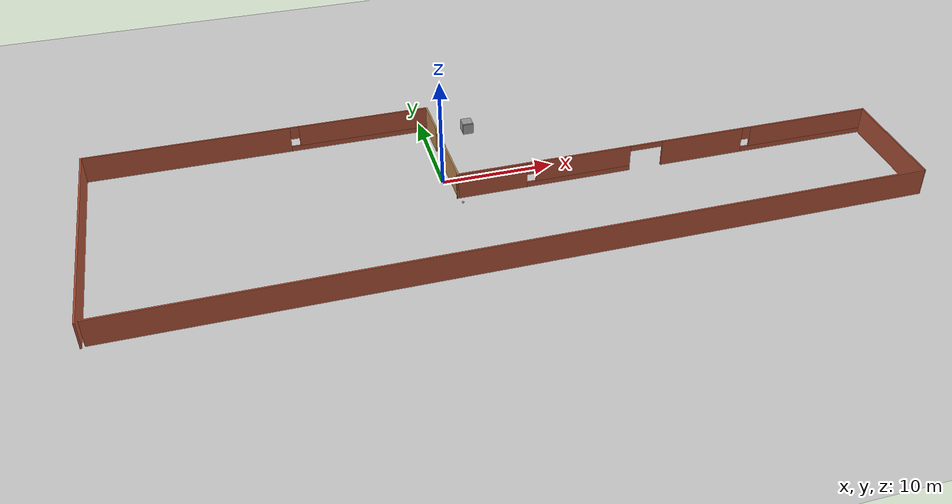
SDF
<sdf version="1.6">
 <world name="default">
  <plugin name="hello" filename="libhello.so"/>
  <light name="sun" type="directional">
   <pose>0 0 10 0 -0 0</pose>
   <diffuse>0.8 0.8 0.8 1</diffuse>
   <specular>0.2 0.2 0.2 1</specular>
   <attenuation>
    <range>1000</range>
    <constant>0.9</constant>
    <linear>0.01</linear>
    <quadratic>0.001</quadratic>
   </attenuation>
   <direction>-0.5 0.1 -0.9</direction>
  </light>
  <model name="ground_plane">
   <static>1</static>
   <link name="link">
    <collision name="collision">
     <geometry><plane><normal>0 0 1</normal><size>100 100</size></plane></geometry>
     <surface>
      <contact><collide_bitmask>65535</collide_bitmask></contact>
      <friction><ode><mu>100</mu><mu2>50</mu2></ode></friction>
     </surface>
    </collision>
    <visual name="visual">
     <cast_shadows>0</cast_shadows>
     <geometry><plane><normal>0 0 1</normal><size>100 100</size></plane></geometry>
     <material>
      <script><uri>file://media/materials/scripts/gazebo.material</uri><name>Gazebo/Grey</name></script>
     </material>
    </visual>
   </link>
  </model>
  <gravity>0 0 -9.8</gravity>
  <magnetic_field>6e-06 2.3e-05 -4.2e-05</magnetic_field>
  <atmosphere type="adiabatic"/>
  <physics name="default_physics" default="0" type="ode">
   <max_step_size>0.001</max_step_size>
   <real_time_factor>1</real_time_factor>
   <real_time_update_rate>1000</real_time_update_rate>
  </physics>
  <scene><ambient>0.4 0.4 0.4 1</ambient><background>0.7 0.7 0.7 1</background><shadows>1</shadows></scene>
  <spherical_coordinates>
   <surface_model>EARTH_WGS84</surface_model>
   <latitude_deg>0</latitude_deg>
   <longitude_deg>0</longitude_deg>
   <elevation>0</elevation>
   <heading_deg>0</heading_deg>
  </spherical_coordinates>
  <model name="Building">
   <pose>4.6603 -2.25703 0 0 -0 0</pose>
   <link name="Wall_0">
    <collision name="Wall_0_Collision">
     <geometry><box><size>22 0.15 2.5</size></box></geometry>
     <pose>0 0 1.25 0 -0 0</pose>
    </collision>
    <visual name="Wall_0_Visual">
     <pose>0 0 1.25 0 -0 0</pose>
     <geometry><box><size>22 0.15 2.5</size></box></geometry>
     <material>
      <script><uri>file://media/materials/scripts/gazebo.material</uri><name>Gazebo/Bricks</name></script>
      <ambient>0.921569 0.807843 0.615686 1</ambient>
     </material>
     <meta><layer>0</layer></meta>
    </visual>
    <pose>-34.9442 -0.000612 0 0 -0 1.5708</pose>
   </link>
   <link name="Wall_1">
    <pose>-19.5192 10.9244 0 0 -0 0</pose>
    <visual name="Wall_1_Visual_0">
     <pose>-6.39846 0 1.25 0 -0 0</pose>
     <geometry><box><size>18.2031 0.15 2.5</size></box></geometry>
     <material>
      <script><uri>file://media/materials/scripts/gazebo.material</uri><name>Gazebo/Bricks</name></script>
      <ambient>1 1 1 1</ambient>
     </material>
     <meta><layer>0</layer></meta>
    </visual>
    <collision name="Wall_1_Collision_0">
     <geometry><box><size>18.2031 0.15 2.5</size></box></geometry>
     <pose>-6.39846 0 1.25 0 -0 0</pose>
    </collision>
    <visual name="Wall_1_Visual_1">
     <pose>9.10154 0 0.25 0 -0 0</pose>
     <geometry><box><size>12.7969 0.15 0.5</size></box></geometry>
     <material>
      <script><uri>file://media/materials/scripts/gazebo.material</uri><name>Gazebo/Bricks</name></script>
      <ambient>1 1 1 1</ambient>
     </material>
     <meta><layer>0</layer></meta>
    </visual>
    <collision name="Wall_1_Collision_1">
     <geometry><box><size>12.7969 0.15 0.5</size></box></geometry>
     <pose>9.10154 0 0.25 0 -0 0</pose>
    </collision>
    <visual name="Wall_1_Visual_2">
     <pose>9.50155 0 1.5 0 -0 0</pose>
     <geometry><box><size>11.9969 0.15 2</size></box></geometry>
     <material>
      <script><uri>file://media/materials/scripts/gazebo.material</uri><name>Gazebo/Bricks</name></script>
      <ambient>1 1 1 1</ambient>
     </material>
     <meta><layer>0</layer></meta>
    </visual>
    <collision name="Wall_1_Collision_2">
     <geometry><box><size>11.9969 0.15 2</size></box></geometry>
     <pose>9.50155 0 1.5 0 -0 0</pose>
    </collision>
    <visual name="Wall_1_Visual_3">
     <pose>3.10309 0 1.9 0 -0 0</pose>
     <geometry><box><size>0.8 0.15 1.2</size></box></geometry>
     <material>
      <script><uri>file://media/materials/scripts/gazebo.material</uri><name>Gazebo/Bricks</name></script>
      <ambient>1 1 1 1</ambient>
     </material>
     <meta><layer>0</layer></meta>
    </visual>
    <collision name="Wall_1_Collision_3">
     <geometry><box><size>0.8 0.15 1.2</size></box></geometry>
     <pose>3.10309 0 1.9 0 -0 0</pose>
    </collision>
   </link>
   <link name="Wall_2">
    <pose>-4.00067 5.24939 0 0 0 -1.55431</pose>
    <visual name="Wall_2_Visual_0">
     <pose>-3.8412 0 1.25 0 -0 0</pose>
     <geometry><box><size>3.81914 0.15 2.5</size></box></geometry>
     <material>
      <script><uri>file://media/materials/scripts/gazebo.material</uri><name>Gazebo/Wood</name></script>
      <ambient>1 0.764706 0.305882 1</ambient>
     </material>
     <meta><layer>0</layer></meta>
    </visual>
    <collision name="Wall_2_Collision_0">
     <geometry><box><size>3.81914 0.15 2.5</size></box></geometry>
     <pose>-3.8412 0 1.25 0 -0 0</pose>
    </collision>
    <visual name="Wall_2_Visual_1">
     <pose>3.35957 0 1.25 0 -0 0</pose>
     <geometry><box><size>4.7824 0.15 2.5</size></box></geometry>
     <material>
      <script><uri>file://media/materials/scripts/gazebo.material</uri><name>Gazebo/Wood</name></script>
      <ambient>1 0.764706 0.305882 1</ambient>
     </material>
     <meta><layer>0</layer></meta>
    </visual>
    <collision name="Wall_2_Collision_1">
     <geometry><box><size>4.7824 0.15 2.5</size></box></geometry>
     <pose>3.35957 0 1.25 0 -0 0</pose>
    </collision>
    <visual name="Wall_2_Visual_2">
     <pose>-0.481631 0 2.25 0 -0 0</pose>
     <geometry><box><size>2.9 0.15 0.5</size></box></geometry>
     <material>
      <script><uri>file://media/materials/scripts/gazebo.material</uri><name>Gazebo/Wood</name></script>
      <ambient>1 0.764706 0.305882 1</ambient>
     </material>
     <meta><layer>0</layer></meta>
    </visual>
    <collision name="Wall_2_Collision_2">
     <geometry><box><size>2.9 0.15 0.5</size></box></geometry>
     <pose>-0.481631 0 2.25 0 -0 0</pose>
    </collision>
   </link>
   <link name="Wall_3">
    <pose>15.4243 -0.425612 0 0 -0 0</pose>
    <visual name="Wall_3_Visual_0">
     <pose>-16.3255 0 1.25 0 -0 0</pose>
     <geometry><box><size>6.34906 0.15 2.5</size></box></geometry>
     <material>
      <script><uri>file://media/materials/scripts/gazebo.material</uri><name>Gazebo/Bricks</name></script>
      <ambient>0.435294 0.796078 0.67451 1</ambient>
     </material>
     <meta><layer>0</layer></meta>
    </visual>
    <collision name="Wall_3_Collision_0">
     <geometry><box><size>6.34906 0.15 2.5</size></box></geometry>
     <pose>-16.3255 0 1.25 0 -0 0</pose>
    </collision>
    <visual name="Wall_3_Visual_1">
     <pose>3.33272 0 1.25 0 -0 0</pose>
     <geometry><box><size>7.83192 0.15 2.5</size></box></geometry>
     <material>
      <script><uri>file://media/materials/scripts/gazebo.material</uri><name>Gazebo/Bricks</name></script>
      <ambient>0.435294 0.796078 0.67451 1</ambient>
     </material>
     <meta><layer>0</layer></meta>
    </visual>
    <collision name="Wall_3_Collision_1">
     <geometry><box><size>7.83192 0.15 2.5</size></box></geometry>
     <pose>3.33272 0 1.25 0 -0 0</pose>
    </collision>
    <visual name="Wall_3_Visual_2">
     <pose>-8.36709 0 0.25 0 -0 0</pose>
     <geometry><box><size>9.5677 0.15 0.5</size></box></geometry>
     <material>
      <script><uri>file://media/materials/scripts/gazebo.material</uri><name>Gazebo/Bricks</name></script>
      <ambient>0.435294 0.796078 0.67451 1</ambient>
     </material>
     <meta><layer>0</layer></meta>
    </visual>
    <collision name="Wall_3_Collision_2">
     <geometry><box><size>9.5677 0.15 0.5</size></box></geometry>
     <pose>-8.36709 0 0.25 0 -0 0</pose>
    </collision>
    <visual name="Wall_3_Visual_3">
     <pose>13.3743 0 0.25 0 -0 0</pose>
     <geometry><box><size>12.2513 0.15 0.5</size></box></geometry>
     <material>
      <script><uri>file://media/materials/scripts/gazebo.material</uri><name>Gazebo/Bricks</name></script>
      <ambient>0.435294 0.796078 0.67451 1</ambient>
     </material>
     <meta><layer>0</layer></meta>
    </visual>
    <collision name="Wall_3_Collision_3">
     <geometry><box><size>12.2513 0.15 0.5</size></box></geometry>
     <pose>13.3743 0 0.25 0 -0 0</pose>
    </collision>
    <visual name="Wall_3_Visual_4">
     <pose>-7.96709 0 1.5 0 -0 0</pose>
     <geometry><box><size>8.7677 0.15 2</size></box></geometry>
     <material>
      <script><uri>file://media/materials/scripts/gazebo.material</uri><name>Gazebo/Bricks</name></script>
      <ambient>0.435294 0.796078 0.67451 1</ambient>
     </material>
     <meta><layer>0</layer></meta>
    </visual>
    <collision name="Wall_3_Collision_4">
     <geometry><box><size>8.7677 0.15 2</size></box></geometry>
     <pose>-7.96709 0 1.5 0 -0 0</pose>
    </collision>
    <visual name="Wall_3_Visual_5">
     <pose>-7.96709 0 1.5 0 -0 0</pose>
     <geometry><box><size>8.7677 0.15 2</size></box></geometry>
     <material>
      <script><uri>file://media/materials/scripts/gazebo.material</uri><name>Gazebo/Bricks</name></script>
      <ambient>0.435294 0.796078 0.67451 1</ambient>
     </material>
     <meta><layer>0</layer></meta>
    </visual>
    <collision name="Wall_3_Collision_5">
     <geometry><box><size>8.7677 0.15 2</size></box></geometry>
     <pose>-7.96709 0 1.5 0 -0 0</pose>
    </collision>
    <visual name="Wall_3_Visual_6">
     <pose>13.7743 0 1.5 0 -0 0</pose>
     <geometry><box><size>11.4513 0.15 2</size></box></geometry>
     <material>
      <script><uri>file://media/materials/scripts/gazebo.material</uri><name>Gazebo/Bricks</name></script>
      <ambient>0.435294 0.796078 0.67451 1</ambient>
     </material>
     <meta><layer>0</layer></meta>
    </visual>
    <collision name="Wall_3_Collision_6">
     <geometry><box><size>11.4513 0.15 2</size></box></geometry>
     <pose>13.7743 0 1.5 0 -0 0</pose>
    </collision>
    <visual name="Wall_3_Visual_7">
     <pose>-12.7509 0 1.9 0 -0 0</pose>
     <geometry><box><size>0.8 0.15 1.2</size></box></geometry>
     <material>
      <script><uri>file://media/materials/scripts/gazebo.material</uri><name>Gazebo/Bricks</name></script>
      <ambient>0.435294 0.796078 0.67451 1</ambient>
     </material>
     <meta><layer>0</layer></meta>
    </visual>
    <collision name="Wall_3_Collision_7">
     <geometry><box><size>0.8 0.15 1.2</size></box></geometry>
     <pose>-12.7509 0 1.9 0 -0 0</pose>
    </collision>
    <visual name="Wall_3_Visual_8">
     <pose>7.64867 0 1.9 0 -0 0</pose>
     <geometry><box><size>0.8 0.15 1.2</size></box></geometry>
     <material>
      <script><uri>file://media/materials/scripts/gazebo.material</uri><name>Gazebo/Bricks</name></script>
      <ambient>0.435294 0.796078 0.67451 1</ambient>
     </material>
     <meta><layer>0</layer></meta>
    </visual>
    <collision name="Wall_3_Collision_8">
     <geometry><box><size>0.8 0.15 1.2</size></box></geometry>
     <pose>7.64867 0 1.9 0 -0 0</pose>
    </collision>
    <visual name="Wall_3_Visual_9">
     <pose>-2.08324 0 2.25 0 -0 0</pose>
     <geometry><box><size>3 0.15 0.5</size></box></geometry>
     <material>
      <script><uri>file://media/materials/scripts/gazebo.material</uri><name>Gazebo/Bricks</name></script>
      <ambient>0.435294 0.796078 0.67451 1</ambient>
     </material>
     <meta><layer>0</layer></meta>
    </visual>
    <collision name="Wall_3_Collision_9">
     <geometry><box><size>3 0.15 0.5</size></box></geometry>
     <pose>-2.08324 0 2.25 0 -0 0</pose>
    </collision>
    <visual name="Wall_3_Visual_10">
     <pose>-2.08324 0 2.25 0 -0 0</pose>
     <geometry><box><size>3 0.15 0.5</size></box></geometry>
     <material>
      <script><uri>file://media/materials/scripts/gazebo.material</uri><name>Gazebo/Bricks</name></script>
      <ambient>0.435294 0.796078 0.67451 1</ambient>
     </material>
     <meta><layer>0</layer></meta>
    </visual>
    <collision name="Wall_3_Collision_10">
     <geometry><box><size>3 0.15 0.5</size></box></geometry>
     <pose>-2.08324 0 2.25 0 -0 0</pose>
    </collision>
   </link>
   <link name="Wall_4">
    <collision name="Wall_4_Collision">
     <geometry><box><size>10.5017 0.15 2.5</size></box></geometry>
     <pose>0 0 1.25 0 -0 0</pose>
    </collision>
    <visual name="Wall_4_Visual">
     <pose>0 0 1.25 0 -0 0</pose>
     <geometry><box><size>10.5017 0.15 2.5</size></box></geometry>
     <material>
      <script><uri>file://media/materials/scripts/gazebo.material</uri><name>Gazebo/Bricks</name></script>
      <ambient>1 1 1 1</ambient>
     </material>
     <meta><layer>0</layer></meta>
    </visual>
    <pose>34.8493 -5.60061 0 0 0 -1.58888</pose>
   </link>
   <link name="Wall_5">
    <collision name="Wall_5_Collision">
     <geometry><box><size>69.5 0.15 2.5</size></box></geometry>
     <pose>0 0 1.25 0 -0 0</pose>
    </collision>
    <visual name="Wall_5_Visual">
     <pose>0 0 1.25 0 -0 0</pose>
     <geometry><box><size>69.5 0.15 2.5</size></box></geometry>
     <material>
      <script><uri>file://media/materials/scripts/gazebo.material</uri><name>Gazebo/Bricks</name></script>
      <ambient>1 1 1 1</ambient>
     </material>
     <meta><layer>0</layer></meta>
    </visual>
    <pose>0.080754 -10.7756 0 0 -0 3.14159</pose>
   </link>
   <static>1</static>
  </model>
  <model name="model_cupboard">
   <link name="link_0">
    <pose>0 0.32 0 0 -0 0</pose>
    <inertial>
     <mass>1</mass>
     <inertia>
      <ixx>0.166667</ixx>
      <ixy>0</ixy>
      <ixz>0</ixz>
      <iyy>0.166667</iyy>
      <iyz>0</iyz>
      <izz>0.166667</izz>
     </inertia>
    </inertial>
    <visual name="visual">
     <geometry><box><size>1 1 1</size></box></geometry>
     <material>
      <lighting>1</lighting>
      <script><uri>file://media/materials/scripts/gazebo.material</uri><name>Gazebo/Grey</name></script>
      <shader type="pixel"><normal_map>__default__</normal_map></shader>
      <ambient>0.3 0.3 0.3 1</ambient>
      <diffuse>0.7 0.7 0.7 1</diffuse>
      <specular>0.01 0.01 0.01 1</specular>
      <emissive>0 0 0 1</emissive>
     </material>
    </visual>
    <collision name="collision">
     <geometry><box><size>1 1 1</size></box></geometry>
     <surface>
      <friction>
       <ode><mu>1</mu><mu2>1</mu2><fdir1>0 0 0</fdir1><slip1>0</slip1><slip2>0</slip2></ode>
       <torsional>
        <coefficient>1</coefficient>
        <patch_radius>0</patch_radius>
        <surface_radius>0</surface_radius>
        <use_patch_radius>1</use_patch_radius>
        <ode><slip>0</slip></ode>
       </torsional>
      </friction>
      <bounce><restitution_coefficient>0</restitution_coefficient><threshold>1e+06</threshold></bounce>
      <contact>
       <collide_without_contact>0</collide_without_contact>
       <collide_without_contact_bitmask>1</collide_without_contact_bitmask>
       <collide_bitmask>1</collide_bitmask>
       <ode>
        <soft_cfm>0</soft_cfm>
        <soft_erp>0.2</soft_erp>
        <kp>1e+13</kp>
        <kd>1</kd>
        <max_vel>0.01</max_vel>
        <min_depth>0</min_depth>
       </ode>
       <bullet>
        <split_impulse>1</split_impulse>
        <split_impulse_penetration_threshold>-0.01</split_impulse_penetration_threshold>
        <soft_cfm>0</soft_cfm>
        <soft_erp>0.2</soft_erp>
        <kp>1e+13</kp>
        <kd>1</kd>
       </bullet>
      </contact>
     </surface>
    </collision>
   </link>
   <link name="link_1">
    <pose>3e-06 -0.319998 0 0 -0 0</pose>
    <inertial>
     <mass>1</mass>
     <inertia>
      <ixx>0.166667</ixx>
      <ixy>0</ixy>
      <ixz>0</ixz>
      <iyy>0.166667</iyy>
      <iyz>0</iyz>
      <izz>0.166667</izz>
     </inertia>
    </inertial>
    <visual name="visual">
     <geometry><box><size>1 0.1 1</size></box></geometry>
     <material>
      <lighting>1</lighting>
      <script><uri>file://media/materials/scripts/gazebo.material</uri><name>Gazebo/Grey</name></script>
      <shader type="pixel"><normal_map>__default__</normal_map></shader>
      <ambient>0.3 0.3 0.3 1</ambient>
      <diffuse>0.7 0.7 0.7 1</diffuse>
      <specular>0.01 0.01 0.01 1</specular>
      <emissive>0 0 0 1</emissive>
     </material>
    </visual>
    <collision name="collision">
     <geometry><box><size>1 0.1 1</size></box></geometry>
     <surface>
      <friction>
       <ode><mu>1</mu><mu2>1</mu2><fdir1>0 0 0</fdir1><slip1>0</slip1><slip2>0</slip2></ode>
       <torsional>
        <coefficient>1</coefficient>
        <patch_radius>0</patch_radius>
        <surface_radius>0</surface_radius>
        <use_patch_radius>1</use_patch_radius>
        <ode><slip>0</slip></ode>
       </torsional>
      </friction>
      <bounce><restitution_coefficient>0</restitution_coefficient><threshold>1e+06</threshold></bounce>
      <contact>
       <collide_without_contact>0</collide_without_contact>
       <collide_without_contact_bitmask>1</collide_without_contact_bitmask>
       <collide_bitmask>1</collide_bitmask>
       <ode>
        <soft_cfm>0</soft_cfm>
        <soft_erp>0.2</soft_erp>
        <kp>1e+13</kp>
        <kd>1</kd>
        <max_vel>0.01</max_vel>
        <min_depth>0</min_depth>
       </ode>
       <bullet>
        <split_impulse>1</split_impulse>
        <split_impulse_penetration_threshold>-0.01</split_impulse_penetration_threshold>
        <soft_cfm>0</soft_cfm>
        <soft_erp>0.2</soft_erp>
        <kp>1e+13</kp>
        <kd>1</kd>
       </bullet>
      </contact>
     </surface>
    </collision>
   </link>
   <joint name="link_0_JOINT_1" type="revolute">
    <parent>link_0</parent>
    <child>link_1</child>
    <axis>
     <xyz>0 0 1</xyz>
     <use_parent_model_frame>0</use_parent_model_frame>
     <limit>
      <lower>-1.79769e+308</lower>
      <upper>1.79769e+308</upper>
      <effort>-1</effort>
      <velocity>-1</velocity>
     </limit>
     <dynamics>
      <spring_reference>0</spring_reference>
      <spring_stiffness>0</spring_stiffness>
      <damping>0</damping>
      <friction>0</friction>
     </dynamics>
    </axis>
    <physics>
     <ode><limit><cfm>0</cfm><erp>0.2</erp></limit><suspension><cfm>0</cfm><erp>0.2</erp></suspension></ode>
    </physics>
   </joint>
   <static>0</static>
   <pose>4.15147 7.38811 0.5 0 0 -1.6e-05</pose>
  </model>
  <model name="model_cupboard_0">
   <link name="link_0">
    <pose>0 0.32 0.5 0 -0 0</pose>
    <inertial>
     <mass>1</mass>
     <inertia>
      <ixx>0.166667</ixx>
      <ixy>0</ixy>
      <ixz>0</ixz>
      <iyy>0.166667</iyy>
      <iyz>0</iyz>
      <izz>0.166667</izz>
     </inertia>
    </inertial>
    <visual name="visual">
     <geometry><box><size>1 1 1</size></box></geometry>
     <material>
      <lighting>1</lighting>
      <script><uri>file://media/materials/scripts/gazebo.material</uri><name>Gazebo/Grey</name></script>
      <shader type="pixel"><normal_map>__default__</normal_map></shader>
      <ambient>0.3 0.3 0.3 1</ambient>
      <diffuse>0.7 0.7 0.7 1</diffuse>
      <specular>0.01 0.01 0.01 1</specular>
      <emissive>0 0 0 1</emissive>
     </material>
    </visual>
    <collision name="collision">
     <geometry><box><size>1 1 1</size></box></geometry>
     <surface>
      <friction>
       <ode><mu>1</mu><mu2>1</mu2><fdir1>0 0 0</fdir1><slip1>0</slip1><slip2>0</slip2></ode>
       <torsional>
        <coefficient>1</coefficient>
        <patch_radius>0</patch_radius>
        <surface_radius>0</surface_radius>
        <use_patch_radius>1</use_patch_radius>
        <ode><slip>0</slip></ode>
       </torsional>
      </friction>
      <bounce><restitution_coefficient>0</restitution_coefficient><threshold>1e+06</threshold></bounce>
      <contact>
       <collide_without_contact>0</collide_without_contact>
       <collide_without_contact_bitmask>1</collide_without_contact_bitmask>
       <collide_bitmask>1</collide_bitmask>
       <ode>
        <soft_cfm>0</soft_cfm>
        <soft_erp>0.2</soft_erp>
        <kp>1e+13</kp>
        <kd>1</kd>
        <max_vel>0.01</max_vel>
        <min_depth>0</min_depth>
       </ode>
       <bullet>
        <split_impulse>1</split_impulse>
        <split_impulse_penetration_threshold>-0.01</split_impulse_penetration_threshold>
        <soft_cfm>0</soft_cfm>
        <soft_erp>0.2</soft_erp>
        <kp>1e+13</kp>
        <kd>1</kd>
       </bullet>
      </contact>
     </surface>
    </collision>
   </link>
   <link name="link_1">
    <pose>3e-06 -0.319998 0.5 0 -0 0</pose>
    <inertial>
     <mass>1</mass>
     <inertia>
      <ixx>0.166667</ixx>
      <ixy>0</ixy>
      <ixz>0</ixz>
      <iyy>0.166667</iyy>
      <iyz>0</iyz>
      <izz>0.166667</izz>
     </inertia>
    </inertial>
    <visual name="visual">
     <geometry><box><size>1 0.1 1</size></box></geometry>
     <material>
      <lighting>1</lighting>
      <script><uri>file://media/materials/scripts/gazebo.material</uri><name>Gazebo/Grey</name></script>
      <shader type="pixel"><normal_map>__default__</normal_map></shader>
      <ambient>0.3 0.3 0.3 1</ambient>
      <diffuse>0.7 0.7 0.7 1</diffuse>
      <specular>0.01 0.01 0.01 1</specular>
      <emissive>0 0 0 1</emissive>
     </material>
    </visual>
    <collision name="collision">
     <geometry><box><size>1 0.1 1</size></box></geometry>
     <surface>
      <friction>
       <ode><mu>1</mu><mu2>1</mu2><fdir1>0 0 0</fdir1><slip1>0</slip1><slip2>0</slip2></ode>
       <torsional>
        <coefficient>1</coefficient>
        <patch_radius>0</patch_radius>
        <surface_radius>0</surface_radius>
        <use_patch_radius>1</use_patch_radius>
        <ode><slip>0</slip></ode>
       </torsional>
      </friction>
      <bounce><restitution_coefficient>0</restitution_coefficient><threshold>1e+06</threshold></bounce>
      <contact>
       <collide_without_contact>0</collide_without_contact>
       <collide_without_contact_bitmask>1</collide_without_contact_bitmask>
       <collide_bitmask>1</collide_bitmask>
       <ode>
        <soft_cfm>0</soft_cfm>
        <soft_erp>0.2</soft_erp>
        <kp>1e+13</kp>
        <kd>1</kd>
        <max_vel>0.01</max_vel>
        <min_depth>0</min_depth>
       </ode>
       <bullet>
        <split_impulse>1</split_impulse>
        <split_impulse_penetration_threshold>-0.01</split_impulse_penetration_threshold>
        <soft_cfm>0</soft_cfm>
        <soft_erp>0.2</soft_erp>
        <kp>1e+13</kp>
        <kd>1</kd>
       </bullet>
      </contact>
     </surface>
    </collision>
   </link>
   <joint name="link_0_JOINT_1" type="revolute">
    <parent>link_0</parent>
    <child>link_1</child>
    <axis>
     <xyz>0 0 1</xyz>
     <use_parent_model_frame>0</use_parent_model_frame>
     <limit>
      <lower>-1.79769e+308</lower>
      <upper>1.79769e+308</upper>
      <effort>-1</effort>
      <velocity>-1</velocity>
     </limit>
     <dynamics>
      <spring_reference>0</spring_reference>
      <spring_stiffness>0</spring_stiffness>
      <damping>0</damping>
      <friction>0</friction>
     </dynamics>
    </axis>
    <physics>
     <ode><limit><cfm>0</cfm><erp>0.2</erp></limit><suspension><cfm>0</cfm><erp>0.2</erp></suspension></ode>
    </physics>
   </joint>
   <static>0</static>
   <pose>3.04725 -1.50064 0 0 0 -1.6e-05</pose>
  </model>
  <model name="my_ball">
   <link name="link_0">
    <inertial>
     <mass>1</mass>
     <inertia><ixx>0.1</ixx><ixy>0</ixy><ixz>0</ixz><iyy>0.1</iyy><iyz>0</iyz><izz>0.1</izz></inertia>
    </inertial>
    <visual name="visual">
     <geometry><sphere><radius>0.1</radius></sphere></geometry>
     <material>
      <lighting>1</lighting>
      <script><uri>file://media/materials/scripts/gazebo.material</uri><name>Gazebo/Grey</name></script>
      <ambient>1 1 1 1</ambient>
      <diffuse>1 1 1 1</diffuse>
      <specular>1 1 1 1</specular>
      <emissive>1 1 1 1</emissive>
      <shader type="vertex"><normal_map>__default__</normal_map></shader>
     </material>
    </visual>
    <collision name="collision">
     <geometry><sphere><radius>0.1</radius></sphere></geometry>
     <surface>
      <friction>
       <ode><mu>1</mu><mu2>1</mu2><fdir1>0 0 0</fdir1><slip1>0</slip1><slip2>0</slip2></ode>
       <torsional>
        <coefficient>1</coefficient>
        <patch_radius>0</patch_radius>
        <surface_radius>0</surface_radius>
        <use_patch_radius>1</use_patch_radius>
        <ode><slip>0</slip></ode>
       </torsional>
      </friction>
      <bounce><restitution_coefficient>0</restitution_coefficient><threshold>1e+06</threshold></bounce>
      <contact>
       <collide_without_contact>0</collide_without_contact>
       <collide_without_contact_bitmask>1</collide_without_contact_bitmask>
       <collide_bitmask>1</collide_bitmask>
       <ode>
        <soft_cfm>0</soft_cfm>
        <soft_erp>0.2</soft_erp>
        <kp>1e+13</kp>
        <kd>1</kd>
        <max_vel>0.01</max_vel>
        <min_depth>0</min_depth>
       </ode>
       <bullet>
        <split_impulse>1</split_impulse>
        <split_impulse_penetration_threshold>-0.01</split_impulse_penetration_threshold>
        <soft_cfm>0</soft_cfm>
        <soft_erp>0.2</soft_erp>
        <kp>1e+13</kp>
        <kd>1</kd>
       </bullet>
      </contact>
     </surface>
    </collision>
   </link>
   <static>0</static>
   <pose>0.922732 -3.51382 0.1 0 -0 0</pose>
  </model>
 </world>
</sdf>
